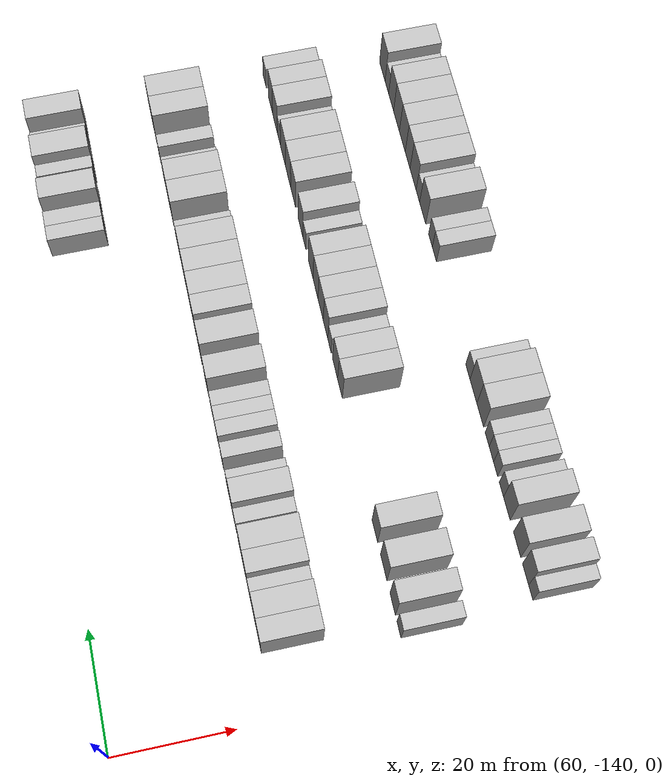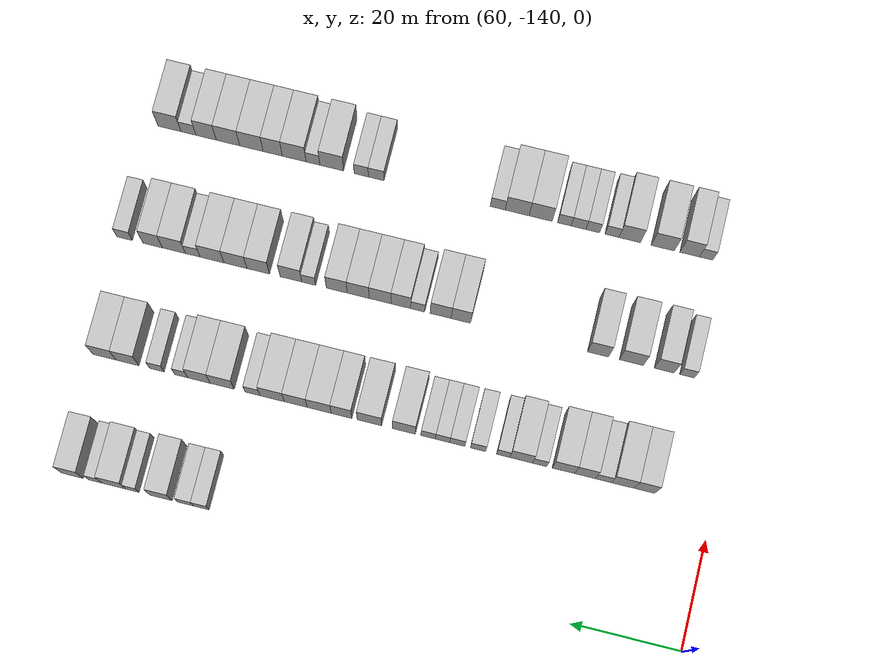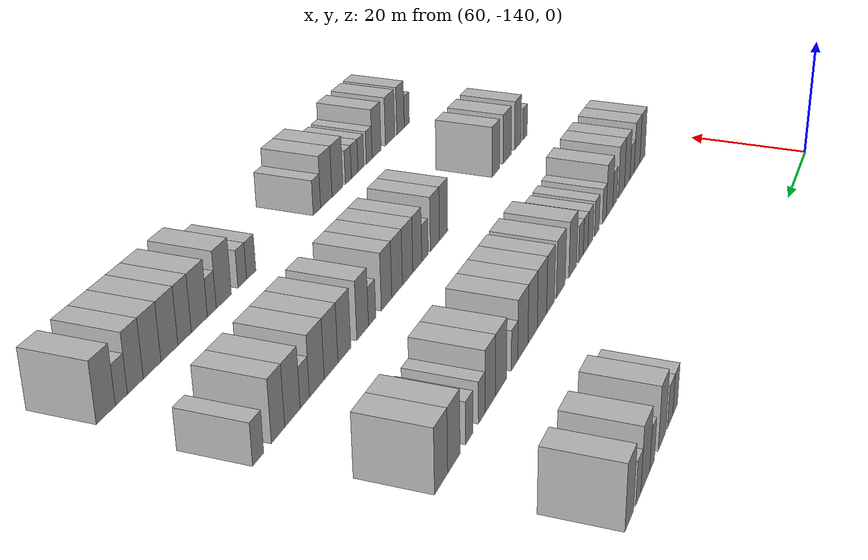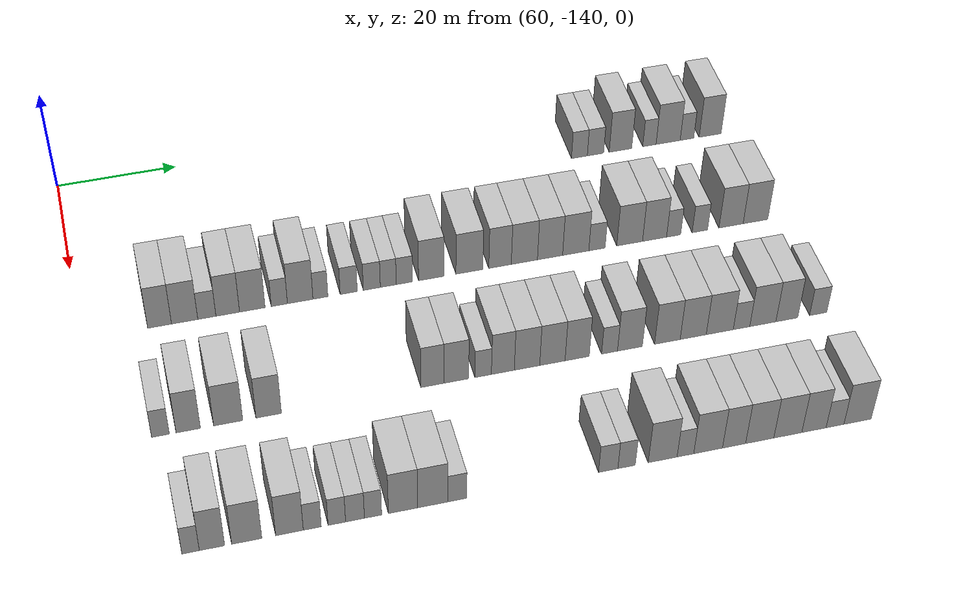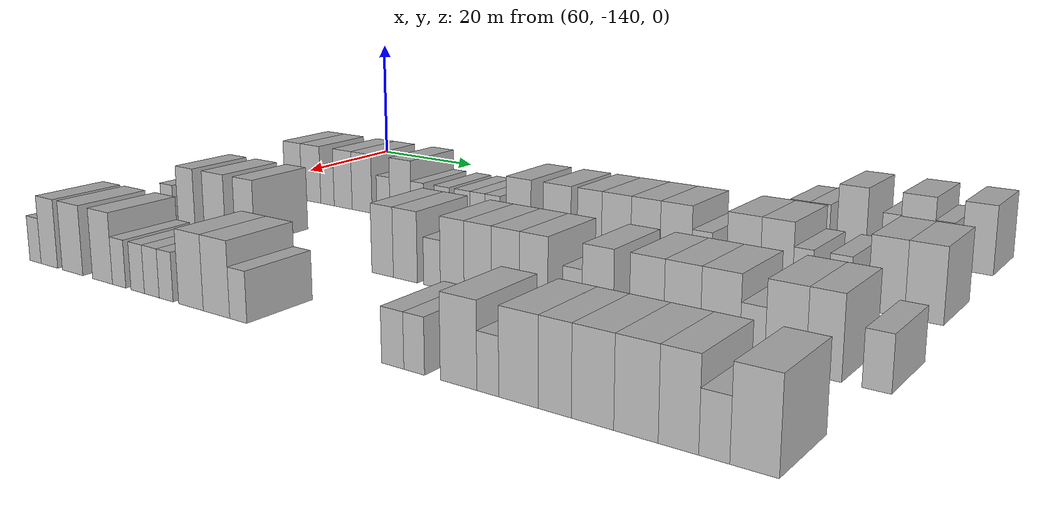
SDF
<sdf version="1.6">
 <world name="default">
  <model name="building_453">
   <static>1</static>
   <pose>69.0000 -52.1066 0 0.000000 0.000000 0.000000</pose>
   <link name="link">
    <pose>0 0 3.00 0 0 0</pose>
    <collision name="collision"><geometry><box><size>10.0000 2.8390 6.0000</size></box></geometry></collision>
    <visual name="visual">
     <cast_shadows>0</cast_shadows>
     <geometry><box><size>10.0000 2.8390 6.0000</size></box></geometry>
     <material>
      <script>
       <uri>model://HANNAS_wall/materials/scripts</uri>
       <uri>model://HANNAS_wall/materials/textures</uri>
       <name>vrc/HANNAS_wall</name>
      </script>
     </material>
    </visual>
   </link>
  </model>
  <model name="building_454">
   <static>1</static>
   <pose>69.0000 -49.2203 0 0.000000 0.000000 0.000000</pose>
   <link name="link">
    <pose>0 0 3.00 0 0 0</pose>
    <collision name="collision"><geometry><box><size>10.0000 2.9337 6.0000</size></box></geometry></collision>
    <visual name="visual">
     <cast_shadows>0</cast_shadows>
     <geometry><box><size>10.0000 2.9337 6.0000</size></box></geometry>
     <material>
      <script>
       <uri>model://HANNAS_wall/materials/scripts</uri>
       <uri>model://HANNAS_wall/materials/textures</uri>
       <name>vrc/HANNAS_wall</name>
      </script>
     </material>
    </visual>
   </link>
  </model>
  <model name="building_455">
   <static>1</static>
   <pose>69.0000 -44.7203 0 0.000000 0.000000 0.000000</pose>
   <link name="link">
    <pose>0 0 4.50 0 0 0</pose>
    <collision name="collision"><geometry><box><size>10.0000 4.0661 9.0000</size></box></geometry></collision>
    <visual name="visual">
     <cast_shadows>0</cast_shadows>
     <geometry><box><size>10.0000 4.0661 9.0000</size></box></geometry>
     <material>
      <script>
       <uri>model://HANNAS_wall/materials/scripts</uri>
       <uri>model://HANNAS_wall/materials/textures</uri>
       <name>vrc/HANNAS_wall</name>
      </script>
     </material>
    </visual>
   </link>
  </model>
  <model name="building_456">
   <static>1</static>
   <pose>69.0000 -39.4778 0 0.000000 0.000000 0.000000</pose>
   <link name="link">
    <pose>0 0 3.00 0 0 0</pose>
    <collision name="collision"><geometry><box><size>10.0000 2.4190 6.0000</size></box></geometry></collision>
    <visual name="visual">
     <cast_shadows>0</cast_shadows>
     <geometry><box><size>10.0000 2.4190 6.0000</size></box></geometry>
     <material>
      <script>
       <uri>model://HANNAS_wall/materials/scripts</uri>
       <uri>model://HANNAS_wall/materials/textures</uri>
       <name>vrc/HANNAS_wall</name>
      </script>
     </material>
    </visual>
   </link>
  </model>
  <model name="building_457">
   <static>1</static>
   <pose>69.0000 -36.0735 0 0.000000 0.000000 0.000000</pose>
   <link name="link">
    <pose>0 0 4.50 0 0 0</pose>
    <collision name="collision"><geometry><box><size>10.0000 4.3895 9.0000</size></box></geometry></collision>
    <visual name="visual">
     <cast_shadows>0</cast_shadows>
     <geometry><box><size>10.0000 4.3895 9.0000</size></box></geometry>
     <material>
      <script>
       <uri>model://HANNAS_wall/materials/scripts</uri>
       <uri>model://HANNAS_wall/materials/textures</uri>
       <name>vrc/HANNAS_wall</name>
      </script>
     </material>
    </visual>
   </link>
  </model>
  <model name="building_458">
   <static>1</static>
   <pose>69.0000 -32.6415 0 0.000000 0.000000 0.000000</pose>
   <link name="link">
    <pose>0 0 3.00 0 0 0</pose>
    <collision name="collision"><geometry><box><size>10.0000 2.4745 6.0000</size></box></geometry></collision>
    <visual name="visual">
     <cast_shadows>0</cast_shadows>
     <geometry><box><size>10.0000 2.4745 6.0000</size></box></geometry>
     <material>
      <script>
       <uri>model://HANNAS_wall/materials/scripts</uri>
       <uri>model://HANNAS_wall/materials/textures</uri>
       <name>vrc/HANNAS_wall</name>
      </script>
     </material>
    </visual>
   </link>
  </model>
  <model name="building_459">
   <static>1</static>
   <pose>69.0000 -28.3959 0 0.000000 0.000000 0.000000</pose>
   <link name="link">
    <pose>0 0 4.50 0 0 0</pose>
    <collision name="collision"><geometry><box><size>10.0000 4.0167 9.0000</size></box></geometry></collision>
    <visual name="visual">
     <cast_shadows>0</cast_shadows>
     <geometry><box><size>10.0000 4.0167 9.0000</size></box></geometry>
     <material>
      <script>
       <uri>model://HANNAS_wall/materials/scripts</uri>
       <uri>model://HANNAS_wall/materials/textures</uri>
       <name>vrc/HANNAS_wall</name>
      </script>
     </material>
    </visual>
   </link>
  </model>
  <model name="building_625">
   <static>1</static>
   <pose>91.0000 -127.5395 0 0.000000 0.000000 0.000000</pose>
   <link name="link">
    <pose>0 0 4.50 0 0 0</pose>
    <collision name="collision"><geometry><box><size>10.0000 3.7783 9.0000</size></box></geometry></collision>
    <visual name="visual">
     <cast_shadows>0</cast_shadows>
     <geometry><box><size>10.0000 3.7783 9.0000</size></box></geometry>
     <material>
      <script>
       <uri>model://HANNAS_wall/materials/scripts</uri>
       <uri>model://HANNAS_wall/materials/textures</uri>
       <name>vrc/HANNAS_wall</name>
      </script>
     </material>
    </visual>
   </link>
  </model>
  <model name="building_626">
   <static>1</static>
   <pose>91.0000 -123.5668 0 0.000000 0.000000 0.000000</pose>
   <link name="link">
    <pose>0 0 4.50 0 0 0</pose>
    <collision name="collision"><geometry><box><size>10.0000 4.1671 9.0000</size></box></geometry></collision>
    <visual name="visual">
     <cast_shadows>0</cast_shadows>
     <geometry><box><size>10.0000 4.1671 9.0000</size></box></geometry>
     <material>
      <script>
       <uri>model://HANNAS_wall/materials/scripts</uri>
       <uri>model://HANNAS_wall/materials/textures</uri>
       <name>vrc/HANNAS_wall</name>
      </script>
     </material>
    </visual>
   </link>
  </model>
  <model name="building_627">
   <static>1</static>
   <pose>91.0000 -120.0389 0 0.000000 0.000000 0.000000</pose>
   <link name="link">
    <pose>0 0 3.00 0 0 0</pose>
    <collision name="collision"><geometry><box><size>10.0000 2.8887 6.0000</size></box></geometry></collision>
    <visual name="visual">
     <cast_shadows>0</cast_shadows>
     <geometry><box><size>10.0000 2.8887 6.0000</size></box></geometry>
     <material>
      <script>
       <uri>model://HANNAS_wall/materials/scripts</uri>
       <uri>model://HANNAS_wall/materials/textures</uri>
       <name>vrc/HANNAS_wall</name>
      </script>
     </material>
    </visual>
   </link>
  </model>
  <model name="building_628">
   <static>1</static>
   <pose>91.0000 -116.7028 0 0.000000 0.000000 0.000000</pose>
   <link name="link">
    <pose>0 0 4.50 0 0 0</pose>
    <collision name="collision"><geometry><box><size>10.0000 3.7835 9.0000</size></box></geometry></collision>
    <visual name="visual">
     <cast_shadows>0</cast_shadows>
     <geometry><box><size>10.0000 3.7835 9.0000</size></box></geometry>
     <material>
      <script>
       <uri>model://HANNAS_wall/materials/scripts</uri>
       <uri>model://HANNAS_wall/materials/textures</uri>
       <name>vrc/HANNAS_wall</name>
      </script>
     </material>
    </visual>
   </link>
  </model>
  <model name="building_629">
   <static>1</static>
   <pose>91.0000 -112.7628 0 0.000000 0.000000 0.000000</pose>
   <link name="link">
    <pose>0 0 4.50 0 0 0</pose>
    <collision name="collision"><geometry><box><size>10.0000 4.0965 9.0000</size></box></geometry></collision>
    <visual name="visual">
     <cast_shadows>0</cast_shadows>
     <geometry><box><size>10.0000 4.0965 9.0000</size></box></geometry>
     <material>
      <script>
       <uri>model://HANNAS_wall/materials/scripts</uri>
       <uri>model://HANNAS_wall/materials/textures</uri>
       <name>vrc/HANNAS_wall</name>
      </script>
     </material>
    </visual>
   </link>
  </model>
  <model name="building_630">
   <static>1</static>
   <pose>91.0000 -108.4117 0 0.000000 0.000000 0.000000</pose>
   <link name="link">
    <pose>0 0 3.00 0 0 0</pose>
    <collision name="collision"><geometry><box><size>10.0000 2.6057 6.0000</size></box></geometry></collision>
    <visual name="visual">
     <cast_shadows>0</cast_shadows>
     <geometry><box><size>10.0000 2.6057 6.0000</size></box></geometry>
     <material>
      <script>
       <uri>model://HANNAS_wall/materials/scripts</uri>
       <uri>model://HANNAS_wall/materials/textures</uri>
       <name>vrc/HANNAS_wall</name>
      </script>
     </material>
    </visual>
   </link>
  </model>
  <model name="building_631">
   <static>1</static>
   <pose>91.0000 -105.0408 0 0.000000 0.000000 0.000000</pose>
   <link name="link">
    <pose>0 0 4.50 0 0 0</pose>
    <collision name="collision"><geometry><box><size>10.0000 4.1360 9.0000</size></box></geometry></collision>
    <visual name="visual">
     <cast_shadows>0</cast_shadows>
     <geometry><box><size>10.0000 4.1360 9.0000</size></box></geometry>
     <material>
      <script>
       <uri>model://HANNAS_wall/materials/scripts</uri>
       <uri>model://HANNAS_wall/materials/textures</uri>
       <name>vrc/HANNAS_wall</name>
      </script>
     </material>
    </visual>
   </link>
  </model>
  <model name="building_632">
   <static>1</static>
   <pose>91.0000 -101.7594 0 0.000000 0.000000 0.000000</pose>
   <link name="link">
    <pose>0 0 3.00 0 0 0</pose>
    <collision name="collision"><geometry><box><size>10.0000 2.4268 6.0000</size></box></geometry></collision>
    <visual name="visual">
     <cast_shadows>0</cast_shadows>
     <geometry><box><size>10.0000 2.4268 6.0000</size></box></geometry>
     <material>
      <script>
       <uri>model://HANNAS_wall/materials/scripts</uri>
       <uri>model://HANNAS_wall/materials/textures</uri>
       <name>vrc/HANNAS_wall</name>
      </script>
     </material>
    </visual>
   </link>
  </model>
  <model name="building_633">
   <static>1</static>
   <pose>91.0000 -97.1519 0 0.000000 0.000000 0.000000</pose>
   <link name="link">
    <pose>0 0 3.00 0 0 0</pose>
    <collision name="collision"><geometry><box><size>10.0000 2.7883 6.0000</size></box></geometry></collision>
    <visual name="visual">
     <cast_shadows>0</cast_shadows>
     <geometry><box><size>10.0000 2.7883 6.0000</size></box></geometry>
     <material>
      <script>
       <uri>model://HANNAS_wall/materials/scripts</uri>
       <uri>model://HANNAS_wall/materials/textures</uri>
       <name>vrc/HANNAS_wall</name>
      </script>
     </material>
    </visual>
   </link>
  </model>
  <model name="building_634">
   <static>1</static>
   <pose>91.0000 -93.3633 0 0.000000 0.000000 0.000000</pose>
   <link name="link">
    <pose>0 0 3.00 0 0 0</pose>
    <collision name="collision"><geometry><box><size>10.0000 2.7889 6.0000</size></box></geometry></collision>
    <visual name="visual">
     <cast_shadows>0</cast_shadows>
     <geometry><box><size>10.0000 2.7889 6.0000</size></box></geometry>
     <material>
      <script>
       <uri>model://HANNAS_wall/materials/scripts</uri>
       <uri>model://HANNAS_wall/materials/textures</uri>
       <name>vrc/HANNAS_wall</name>
      </script>
     </material>
    </visual>
   </link>
  </model>
  <model name="building_635">
   <static>1</static>
   <pose>91.0000 -90.6606 0 0.000000 0.000000 0.000000</pose>
   <link name="link">
    <pose>0 0 3.00 0 0 0</pose>
    <collision name="collision"><geometry><box><size>10.0000 2.6164 6.0000</size></box></geometry></collision>
    <visual name="visual">
     <cast_shadows>0</cast_shadows>
     <geometry><box><size>10.0000 2.6164 6.0000</size></box></geometry>
     <material>
      <script>
       <uri>model://HANNAS_wall/materials/scripts</uri>
       <uri>model://HANNAS_wall/materials/textures</uri>
       <name>vrc/HANNAS_wall</name>
      </script>
     </material>
    </visual>
   </link>
  </model>
  <model name="building_636">
   <static>1</static>
   <pose>91.0000 -88.0102 0 0.000000 0.000000 0.000000</pose>
   <link name="link">
    <pose>0 0 3.00 0 0 0</pose>
    <collision name="collision"><geometry><box><size>10.0000 2.6845 6.0000</size></box></geometry></collision>
    <visual name="visual">
     <cast_shadows>0</cast_shadows>
     <geometry><box><size>10.0000 2.6845 6.0000</size></box></geometry>
     <material>
      <script>
       <uri>model://HANNAS_wall/materials/scripts</uri>
       <uri>model://HANNAS_wall/materials/textures</uri>
       <name>vrc/HANNAS_wall</name>
      </script>
     </material>
    </visual>
   </link>
  </model>
  <model name="building_637">
   <static>1</static>
   <pose>91.0000 -83.5665 0 0.000000 0.000000 0.000000</pose>
   <link name="link">
    <pose>0 0 4.50 0 0 0</pose>
    <collision name="collision"><geometry><box><size>10.0000 4.2030 9.0000</size></box></geometry></collision>
    <visual name="visual">
     <cast_shadows>0</cast_shadows>
     <geometry><box><size>10.0000 4.2030 9.0000</size></box></geometry>
     <material>
      <script>
       <uri>model://HANNAS_wall/materials/scripts</uri>
       <uri>model://HANNAS_wall/materials/textures</uri>
       <name>vrc/HANNAS_wall</name>
      </script>
     </material>
    </visual>
   </link>
  </model>
  <model name="building_638">
   <static>1</static>
   <pose>91.0000 -77.2211 0 0.000000 0.000000 0.000000</pose>
   <link name="link">
    <pose>0 0 4.50 0 0 0</pose>
    <collision name="collision"><geometry><box><size>10.0000 4.4879 9.0000</size></box></geometry></collision>
    <visual name="visual">
     <cast_shadows>0</cast_shadows>
     <geometry><box><size>10.0000 4.4879 9.0000</size></box></geometry>
     <material>
      <script>
       <uri>model://HANNAS_wall/materials/scripts</uri>
       <uri>model://HANNAS_wall/materials/textures</uri>
       <name>vrc/HANNAS_wall</name>
      </script>
     </material>
    </visual>
   </link>
  </model>
  <model name="building_639">
   <static>1</static>
   <pose>91.0000 -72.0878 0 0.000000 0.000000 0.000000</pose>
   <link name="link">
    <pose>0 0 4.50 0 0 0</pose>
    <collision name="collision"><geometry><box><size>10.0000 3.7786 9.0000</size></box></geometry></collision>
    <visual name="visual">
     <cast_shadows>0</cast_shadows>
     <geometry><box><size>10.0000 3.7786 9.0000</size></box></geometry>
     <material>
      <script>
       <uri>model://HANNAS_wall/materials/scripts</uri>
       <uri>model://HANNAS_wall/materials/textures</uri>
       <name>vrc/HANNAS_wall</name>
      </script>
     </material>
    </visual>
   </link>
  </model>
  <model name="building_640">
   <static>1</static>
   <pose>91.0000 -67.9890 0 0.000000 0.000000 0.000000</pose>
   <link name="link">
    <pose>0 0 4.50 0 0 0</pose>
    <collision name="collision"><geometry><box><size>10.0000 4.4190 9.0000</size></box></geometry></collision>
    <visual name="visual">
     <cast_shadows>0</cast_shadows>
     <geometry><box><size>10.0000 4.4190 9.0000</size></box></geometry>
     <material>
      <script>
       <uri>model://HANNAS_wall/materials/scripts</uri>
       <uri>model://HANNAS_wall/materials/textures</uri>
       <name>vrc/HANNAS_wall</name>
      </script>
     </material>
    </visual>
   </link>
  </model>
  <model name="building_641">
   <static>1</static>
   <pose>91.0000 -63.6487 0 0.000000 0.000000 0.000000</pose>
   <link name="link">
    <pose>0 0 4.50 0 0 0</pose>
    <collision name="collision"><geometry><box><size>10.0000 4.2615 9.0000</size></box></geometry></collision>
    <visual name="visual">
     <cast_shadows>0</cast_shadows>
     <geometry><box><size>10.0000 4.2615 9.0000</size></box></geometry>
     <material>
      <script>
       <uri>model://HANNAS_wall/materials/scripts</uri>
       <uri>model://HANNAS_wall/materials/textures</uri>
       <name>vrc/HANNAS_wall</name>
      </script>
     </material>
    </visual>
   </link>
  </model>
  <model name="building_642">
   <static>1</static>
   <pose>91.0000 -59.2855 0 0.000000 0.000000 0.000000</pose>
   <link name="link">
    <pose>0 0 4.50 0 0 0</pose>
    <collision name="collision"><geometry><box><size>10.0000 4.4649 9.0000</size></box></geometry></collision>
    <visual name="visual">
     <cast_shadows>0</cast_shadows>
     <geometry><box><size>10.0000 4.4649 9.0000</size></box></geometry>
     <material>
      <script>
       <uri>model://HANNAS_wall/materials/scripts</uri>
       <uri>model://HANNAS_wall/materials/textures</uri>
       <name>vrc/HANNAS_wall</name>
      </script>
     </material>
    </visual>
   </link>
  </model>
  <model name="building_643">
   <static>1</static>
   <pose>91.0000 -55.6647 0 0.000000 0.000000 0.000000</pose>
   <link name="link">
    <pose>0 0 3.00 0 0 0</pose>
    <collision name="collision"><geometry><box><size>10.0000 2.7769 6.0000</size></box></geometry></collision>
    <visual name="visual">
     <cast_shadows>0</cast_shadows>
     <geometry><box><size>10.0000 2.7769 6.0000</size></box></geometry>
     <material>
      <script>
       <uri>model://HANNAS_wall/materials/scripts</uri>
       <uri>model://HANNAS_wall/materials/textures</uri>
       <name>vrc/HANNAS_wall</name>
      </script>
     </material>
    </visual>
   </link>
  </model>
  <model name="building_644">
   <static>1</static>
   <pose>91.0000 -50.0605 0 0.000000 0.000000 0.000000</pose>
   <link name="link">
    <pose>0 0 4.50 0 0 0</pose>
    <collision name="collision"><geometry><box><size>10.0000 4.4315 9.0000</size></box></geometry></collision>
    <visual name="visual">
     <cast_shadows>0</cast_shadows>
     <geometry><box><size>10.0000 4.4315 9.0000</size></box></geometry>
     <material>
      <script>
       <uri>model://HANNAS_wall/materials/scripts</uri>
       <uri>model://HANNAS_wall/materials/textures</uri>
       <name>vrc/HANNAS_wall</name>
      </script>
     </material>
    </visual>
   </link>
  </model>
  <model name="building_645">
   <static>1</static>
   <pose>91.0000 -45.7682 0 0.000000 0.000000 0.000000</pose>
   <link name="link">
    <pose>0 0 4.50 0 0 0</pose>
    <collision name="collision"><geometry><box><size>10.0000 4.1531 9.0000</size></box></geometry></collision>
    <visual name="visual">
     <cast_shadows>0</cast_shadows>
     <geometry><box><size>10.0000 4.1531 9.0000</size></box></geometry>
     <material>
      <script>
       <uri>model://HANNAS_wall/materials/scripts</uri>
       <uri>model://HANNAS_wall/materials/textures</uri>
       <name>vrc/HANNAS_wall</name>
      </script>
     </material>
    </visual>
   </link>
  </model>
  <model name="building_646">
   <static>1</static>
   <pose>91.0000 -42.4720 0 0.000000 0.000000 0.000000</pose>
   <link name="link">
    <pose>0 0 3.00 0 0 0</pose>
    <collision name="collision"><geometry><box><size>10.0000 2.4392 6.0000</size></box></geometry></collision>
    <visual name="visual">
     <cast_shadows>0</cast_shadows>
     <geometry><box><size>10.0000 2.4392 6.0000</size></box></geometry>
     <material>
      <script>
       <uri>model://HANNAS_wall/materials/scripts</uri>
       <uri>model://HANNAS_wall/materials/textures</uri>
       <name>vrc/HANNAS_wall</name>
      </script>
     </material>
    </visual>
   </link>
  </model>
  <model name="building_647">
   <static>1</static>
   <pose>91.0000 -37.9143 0 0.000000 0.000000 0.000000</pose>
   <link name="link">
    <pose>0 0 3.00 0 0 0</pose>
    <collision name="collision"><geometry><box><size>10.0000 2.6764 6.0000</size></box></geometry></collision>
    <visual name="visual">
     <cast_shadows>0</cast_shadows>
     <geometry><box><size>10.0000 2.6764 6.0000</size></box></geometry>
     <material>
      <script>
       <uri>model://HANNAS_wall/materials/scripts</uri>
       <uri>model://HANNAS_wall/materials/textures</uri>
       <name>vrc/HANNAS_wall</name>
      </script>
     </material>
    </visual>
   </link>
  </model>
  <model name="building_648">
   <static>1</static>
   <pose>91.0000 -32.4590 0 0.000000 0.000000 0.000000</pose>
   <link name="link">
    <pose>0 0 4.50 0 0 0</pose>
    <collision name="collision"><geometry><box><size>10.0000 4.2341 9.0000</size></box></geometry></collision>
    <visual name="visual">
     <cast_shadows>0</cast_shadows>
     <geometry><box><size>10.0000 4.2341 9.0000</size></box></geometry>
     <material>
      <script>
       <uri>model://HANNAS_wall/materials/scripts</uri>
       <uri>model://HANNAS_wall/materials/textures</uri>
       <name>vrc/HANNAS_wall</name>
      </script>
     </material>
    </visual>
   </link>
  </model>
  <model name="building_649">
   <static>1</static>
   <pose>91.0000 -28.1768 0 0.000000 0.000000 0.000000</pose>
   <link name="link">
    <pose>0 0 4.50 0 0 0</pose>
    <collision name="collision"><geometry><box><size>10.0000 4.3303 9.0000</size></box></geometry></collision>
    <visual name="visual">
     <cast_shadows>0</cast_shadows>
     <geometry><box><size>10.0000 4.3303 9.0000</size></box></geometry>
     <material>
      <script>
       <uri>model://HANNAS_wall/materials/scripts</uri>
       <uri>model://HANNAS_wall/materials/textures</uri>
       <name>vrc/HANNAS_wall</name>
      </script>
     </material>
    </visual>
   </link>
  </model>
  <model name="building_816">
   <static>1</static>
   <pose>113.0000 -130.3710 0 0.000000 0.000000 0.000000</pose>
   <link name="link">
    <pose>0 0 3.00 0 0 0</pose>
    <collision name="collision"><geometry><box><size>10.0000 2.6676 6.0000</size></box></geometry></collision>
    <visual name="visual">
     <cast_shadows>0</cast_shadows>
     <geometry><box><size>10.0000 2.6676 6.0000</size></box></geometry>
     <material>
      <script>
       <uri>model://HANNAS_wall/materials/scripts</uri>
       <uri>model://HANNAS_wall/materials/textures</uri>
       <name>vrc/HANNAS_wall</name>
      </script>
     </material>
    </visual>
   </link>
  </model>
  <model name="building_817">
   <static>1</static>
   <pose>113.0000 -126.2046 0 0.000000 0.000000 0.000000</pose>
   <link name="link">
    <pose>0 0 4.50 0 0 0</pose>
    <collision name="collision"><geometry><box><size>10.0000 3.6652 9.0000</size></box></geometry></collision>
    <visual name="visual">
     <cast_shadows>0</cast_shadows>
     <geometry><box><size>10.0000 3.6652 9.0000</size></box></geometry>
     <material>
      <script>
       <uri>model://HANNAS_wall/materials/scripts</uri>
       <uri>model://HANNAS_wall/materials/textures</uri>
       <name>vrc/HANNAS_wall</name>
      </script>
     </material>
    </visual>
   </link>
  </model>
  <model name="building_818">
   <static>1</static>
   <pose>113.0000 -120.1629 0 0.000000 0.000000 0.000000</pose>
   <link name="link">
    <pose>0 0 4.50 0 0 0</pose>
    <collision name="collision"><geometry><box><size>10.0000 4.4180 9.0000</size></box></geometry></collision>
    <visual name="visual">
     <cast_shadows>0</cast_shadows>
     <geometry><box><size>10.0000 4.4180 9.0000</size></box></geometry>
     <material>
      <script>
       <uri>model://HANNAS_wall/materials/scripts</uri>
       <uri>model://HANNAS_wall/materials/textures</uri>
       <name>vrc/HANNAS_wall</name>
      </script>
     </material>
    </visual>
   </link>
  </model>
  <model name="building_819">
   <static>1</static>
   <pose>113.0000 -114.0077 0 0.000000 0.000000 0.000000</pose>
   <link name="link">
    <pose>0 0 4.50 0 0 0</pose>
    <collision name="collision"><geometry><box><size>10.0000 3.8924 9.0000</size></box></geometry></collision>
    <visual name="visual">
     <cast_shadows>0</cast_shadows>
     <geometry><box><size>10.0000 3.8924 9.0000</size></box></geometry>
     <material>
      <script>
       <uri>model://HANNAS_wall/materials/scripts</uri>
       <uri>model://HANNAS_wall/materials/textures</uri>
       <name>vrc/HANNAS_wall</name>
      </script>
     </material>
    </visual>
   </link>
  </model>
  <model name="building_820">
   <static>1</static>
   <pose>113.0000 -88.6542 0 0.000000 0.000000 0.000000</pose>
   <link name="link">
    <pose>0 0 4.50 0 0 0</pose>
    <collision name="collision"><geometry><box><size>10.0000 3.6048 9.0000</size></box></geometry></collision>
    <visual name="visual">
     <cast_shadows>0</cast_shadows>
     <geometry><box><size>10.0000 3.6048 9.0000</size></box></geometry>
     <material>
      <script>
       <uri>model://HANNAS_wall/materials/scripts</uri>
       <uri>model://HANNAS_wall/materials/textures</uri>
       <name>vrc/HANNAS_wall</name>
      </script>
     </material>
    </visual>
   </link>
  </model>
  <model name="building_821">
   <static>1</static>
   <pose>113.0000 -84.8950 0 0.000000 0.000000 0.000000</pose>
   <link name="link">
    <pose>0 0 4.50 0 0 0</pose>
    <collision name="collision"><geometry><box><size>10.0000 3.9136 9.0000</size></box></geometry></collision>
    <visual name="visual">
     <cast_shadows>0</cast_shadows>
     <geometry><box><size>10.0000 3.9136 9.0000</size></box></geometry>
     <material>
      <script>
       <uri>model://HANNAS_wall/materials/scripts</uri>
       <uri>model://HANNAS_wall/materials/textures</uri>
       <name>vrc/HANNAS_wall</name>
      </script>
     </material>
    </visual>
   </link>
  </model>
  <model name="building_822">
   <static>1</static>
   <pose>113.0000 -80.6276 0 0.000000 0.000000 0.000000</pose>
   <link name="link">
    <pose>0 0 3.00 0 0 0</pose>
    <collision name="collision"><geometry><box><size>10.0000 2.6211 6.0000</size></box></geometry></collision>
    <visual name="visual">
     <cast_shadows>0</cast_shadows>
     <geometry><box><size>10.0000 2.6211 6.0000</size></box></geometry>
     <material>
      <script>
       <uri>model://HANNAS_wall/materials/scripts</uri>
       <uri>model://HANNAS_wall/materials/textures</uri>
       <name>vrc/HANNAS_wall</name>
      </script>
     </material>
    </visual>
   </link>
  </model>
  <model name="building_823">
   <static>1</static>
   <pose>113.0000 -77.4933 0 0.000000 0.000000 0.000000</pose>
   <link name="link">
    <pose>0 0 4.50 0 0 0</pose>
    <collision name="collision"><geometry><box><size>10.0000 3.6477 9.0000</size></box></geometry></collision>
    <visual name="visual">
     <cast_shadows>0</cast_shadows>
     <geometry><box><size>10.0000 3.6477 9.0000</size></box></geometry>
     <material>
      <script>
       <uri>model://HANNAS_wall/materials/scripts</uri>
       <uri>model://HANNAS_wall/materials/textures</uri>
       <name>vrc/HANNAS_wall</name>
      </script>
     </material>
    </visual>
   </link>
  </model>
  <model name="building_824">
   <static>1</static>
   <pose>113.0000 -73.6338 0 0.000000 0.000000 0.000000</pose>
   <link name="link">
    <pose>0 0 4.50 0 0 0</pose>
    <collision name="collision"><geometry><box><size>10.0000 4.0712 9.0000</size></box></geometry></collision>
    <visual name="visual">
     <cast_shadows>0</cast_shadows>
     <geometry><box><size>10.0000 4.0712 9.0000</size></box></geometry>
     <material>
      <script>
       <uri>model://HANNAS_wall/materials/scripts</uri>
       <uri>model://HANNAS_wall/materials/textures</uri>
       <name>vrc/HANNAS_wall</name>
      </script>
     </material>
    </visual>
   </link>
  </model>
  <model name="building_825">
   <static>1</static>
   <pose>113.0000 -69.5617 0 0.000000 0.000000 0.000000</pose>
   <link name="link">
    <pose>0 0 4.50 0 0 0</pose>
    <collision name="collision"><geometry><box><size>10.0000 4.0730 9.0000</size></box></geometry></collision>
    <visual name="visual">
     <cast_shadows>0</cast_shadows>
     <geometry><box><size>10.0000 4.0730 9.0000</size></box></geometry>
     <material>
      <script>
       <uri>model://HANNAS_wall/materials/scripts</uri>
       <uri>model://HANNAS_wall/materials/textures</uri>
       <name>vrc/HANNAS_wall</name>
      </script>
     </material>
    </visual>
   </link>
  </model>
  <model name="building_826">
   <static>1</static>
   <pose>113.0000 -65.5762 0 0.000000 0.000000 0.000000</pose>
   <link name="link">
    <pose>0 0 4.50 0 0 0</pose>
    <collision name="collision"><geometry><box><size>10.0000 3.8980 9.0000</size></box></geometry></collision>
    <visual name="visual">
     <cast_shadows>0</cast_shadows>
     <geometry><box><size>10.0000 3.8980 9.0000</size></box></geometry>
     <material>
      <script>
       <uri>model://HANNAS_wall/materials/scripts</uri>
       <uri>model://HANNAS_wall/materials/textures</uri>
       <name>vrc/HANNAS_wall</name>
      </script>
     </material>
    </visual>
   </link>
  </model>
  <model name="building_827">
   <static>1</static>
   <pose>113.0000 -60.3344 0 0.000000 0.000000 0.000000</pose>
   <link name="link">
    <pose>0 0 3.00 0 0 0</pose>
    <collision name="collision"><geometry><box><size>10.0000 2.5856 6.0000</size></box></geometry></collision>
    <visual name="visual">
     <cast_shadows>0</cast_shadows>
     <geometry><box><size>10.0000 2.5856 6.0000</size></box></geometry>
     <material>
      <script>
       <uri>model://HANNAS_wall/materials/scripts</uri>
       <uri>model://HANNAS_wall/materials/textures</uri>
       <name>vrc/HANNAS_wall</name>
      </script>
     </material>
    </visual>
   </link>
  </model>
  <model name="building_828">
   <static>1</static>
   <pose>113.0000 -57.0173 0 0.000000 0.000000 0.000000</pose>
   <link name="link">
    <pose>0 0 4.50 0 0 0</pose>
    <collision name="collision"><geometry><box><size>10.0000 4.0487 9.0000</size></box></geometry></collision>
    <visual name="visual">
     <cast_shadows>0</cast_shadows>
     <geometry><box><size>10.0000 4.0487 9.0000</size></box></geometry>
     <material>
      <script>
       <uri>model://HANNAS_wall/materials/scripts</uri>
       <uri>model://HANNAS_wall/materials/textures</uri>
       <name>vrc/HANNAS_wall</name>
      </script>
     </material>
    </visual>
   </link>
  </model>
  <model name="building_829">
   <static>1</static>
   <pose>113.0000 -50.8930 0 0.000000 0.000000 0.000000</pose>
   <link name="link">
    <pose>0 0 4.50 0 0 0</pose>
    <collision name="collision"><geometry><box><size>10.0000 4.1999 9.0000</size></box></geometry></collision>
    <visual name="visual">
     <cast_shadows>0</cast_shadows>
     <geometry><box><size>10.0000 4.1999 9.0000</size></box></geometry>
     <material>
      <script>
       <uri>model://HANNAS_wall/materials/scripts</uri>
       <uri>model://HANNAS_wall/materials/textures</uri>
       <name>vrc/HANNAS_wall</name>
      </script>
     </material>
    </visual>
   </link>
  </model>
  <model name="building_830">
   <static>1</static>
   <pose>113.0000 -46.6417 0 0.000000 0.000000 0.000000</pose>
   <link name="link">
    <pose>0 0 4.50 0 0 0</pose>
    <collision name="collision"><geometry><box><size>10.0000 4.3027 9.0000</size></box></geometry></collision>
    <visual name="visual">
     <cast_shadows>0</cast_shadows>
     <geometry><box><size>10.0000 4.3027 9.0000</size></box></geometry>
     <material>
      <script>
       <uri>model://HANNAS_wall/materials/scripts</uri>
       <uri>model://HANNAS_wall/materials/textures</uri>
       <name>vrc/HANNAS_wall</name>
      </script>
     </material>
    </visual>
   </link>
  </model>
  <model name="building_831">
   <static>1</static>
   <pose>113.0000 -42.2481 0 0.000000 0.000000 0.000000</pose>
   <link name="link">
    <pose>0 0 4.50 0 0 0</pose>
    <collision name="collision"><geometry><box><size>10.0000 4.4845 9.0000</size></box></geometry></collision>
    <visual name="visual">
     <cast_shadows>0</cast_shadows>
     <geometry><box><size>10.0000 4.4845 9.0000</size></box></geometry>
     <material>
      <script>
       <uri>model://HANNAS_wall/materials/scripts</uri>
       <uri>model://HANNAS_wall/materials/textures</uri>
       <name>vrc/HANNAS_wall</name>
      </script>
     </material>
    </visual>
   </link>
  </model>
  <model name="building_832">
   <static>1</static>
   <pose>113.0000 -38.6339 0 0.000000 0.000000 0.000000</pose>
   <link name="link">
    <pose>0 0 3.00 0 0 0</pose>
    <collision name="collision"><geometry><box><size>10.0000 2.7440 6.0000</size></box></geometry></collision>
    <visual name="visual">
     <cast_shadows>0</cast_shadows>
     <geometry><box><size>10.0000 2.7440 6.0000</size></box></geometry>
     <material>
      <script>
       <uri>model://HANNAS_wall/materials/scripts</uri>
       <uri>model://HANNAS_wall/materials/textures</uri>
       <name>vrc/HANNAS_wall</name>
      </script>
     </material>
    </visual>
   </link>
  </model>
  <model name="building_833">
   <static>1</static>
   <pose>113.0000 -35.0810 0 0.000000 0.000000 0.000000</pose>
   <link name="link">
    <pose>0 0 4.50 0 0 0</pose>
    <collision name="collision"><geometry><box><size>10.0000 4.3618 9.0000</size></box></geometry></collision>
    <visual name="visual">
     <cast_shadows>0</cast_shadows>
     <geometry><box><size>10.0000 4.3618 9.0000</size></box></geometry>
     <material>
      <script>
       <uri>model://HANNAS_wall/materials/scripts</uri>
       <uri>model://HANNAS_wall/materials/textures</uri>
       <name>vrc/HANNAS_wall</name>
      </script>
     </material>
    </visual>
   </link>
  </model>
  <model name="building_834">
   <static>1</static>
   <pose>113.0000 -31.0686 0 0.000000 0.000000 0.000000</pose>
   <link name="link">
    <pose>0 0 4.50 0 0 0</pose>
    <collision name="collision"><geometry><box><size>10.0000 3.6629 9.0000</size></box></geometry></collision>
    <visual name="visual">
     <cast_shadows>0</cast_shadows>
     <geometry><box><size>10.0000 3.6629 9.0000</size></box></geometry>
     <material>
      <script>
       <uri>model://HANNAS_wall/materials/scripts</uri>
       <uri>model://HANNAS_wall/materials/textures</uri>
       <name>vrc/HANNAS_wall</name>
      </script>
     </material>
    </visual>
   </link>
  </model>
  <model name="building_835">
   <static>1</static>
   <pose>113.0000 -25.7887 0 0.000000 0.000000 0.000000</pose>
   <link name="link">
    <pose>0 0 3.00 0 0 0</pose>
    <collision name="collision"><geometry><box><size>10.0000 2.8968 6.0000</size></box></geometry></collision>
    <visual name="visual">
     <cast_shadows>0</cast_shadows>
     <geometry><box><size>10.0000 2.8968 6.0000</size></box></geometry>
     <material>
      <script>
       <uri>model://HANNAS_wall/materials/scripts</uri>
       <uri>model://HANNAS_wall/materials/textures</uri>
       <name>vrc/HANNAS_wall</name>
      </script>
     </material>
    </visual>
   </link>
  </model>
  <model name="building_990">
   <static>1</static>
   <pose>135.0000 -129.0734 0 0.000000 0.000000 0.000000</pose>
   <link name="link">
    <pose>0 0 3.00 0 0 0</pose>
    <collision name="collision"><geometry><box><size>10.0000 2.4908 6.0000</size></box></geometry></collision>
    <visual name="visual">
     <cast_shadows>0</cast_shadows>
     <geometry><box><size>10.0000 2.4908 6.0000</size></box></geometry>
     <material>
      <script>
       <uri>model://HANNAS_wall/materials/scripts</uri>
       <uri>model://HANNAS_wall/materials/textures</uri>
       <name>vrc/HANNAS_wall</name>
      </script>
     </material>
    </visual>
   </link>
  </model>
  <model name="building_991">
   <static>1</static>
   <pose>135.0000 -126.0169 0 0.000000 0.000000 0.000000</pose>
   <link name="link">
    <pose>0 0 4.50 0 0 0</pose>
    <collision name="collision"><geometry><box><size>10.0000 3.6222 9.0000</size></box></geometry></collision>
    <visual name="visual">
     <cast_shadows>0</cast_shadows>
     <geometry><box><size>10.0000 3.6222 9.0000</size></box></geometry>
     <material>
      <script>
       <uri>model://HANNAS_wall/materials/scripts</uri>
       <uri>model://HANNAS_wall/materials/textures</uri>
       <name>vrc/HANNAS_wall</name>
      </script>
     </material>
    </visual>
   </link>
  </model>
  <model name="building_992">
   <static>1</static>
   <pose>135.0000 -121.0386 0 0.000000 0.000000 0.000000</pose>
   <link name="link">
    <pose>0 0 4.50 0 0 0</pose>
    <collision name="collision"><geometry><box><size>10.0000 4.3346 9.0000</size></box></geometry></collision>
    <visual name="visual">
     <cast_shadows>0</cast_shadows>
     <geometry><box><size>10.0000 4.3346 9.0000</size></box></geometry>
     <material>
      <script>
       <uri>model://HANNAS_wall/materials/scripts</uri>
       <uri>model://HANNAS_wall/materials/textures</uri>
       <name>vrc/HANNAS_wall</name>
      </script>
     </material>
    </visual>
   </link>
  </model>
  <model name="building_993">
   <static>1</static>
   <pose>135.0000 -114.8690 0 0.000000 0.000000 0.000000</pose>
   <link name="link">
    <pose>0 0 4.50 0 0 0</pose>
    <collision name="collision"><geometry><box><size>10.0000 4.0047 9.0000</size></box></geometry></collision>
    <visual name="visual">
     <cast_shadows>0</cast_shadows>
     <geometry><box><size>10.0000 4.0047 9.0000</size></box></geometry>
     <material>
      <script>
       <uri>model://HANNAS_wall/materials/scripts</uri>
       <uri>model://HANNAS_wall/materials/textures</uri>
       <name>vrc/HANNAS_wall</name>
      </script>
     </material>
    </visual>
   </link>
  </model>
  <model name="building_994">
   <static>1</static>
   <pose>135.0000 -111.5622 0 0.000000 0.000000 0.000000</pose>
   <link name="link">
    <pose>0 0 3.00 0 0 0</pose>
    <collision name="collision"><geometry><box><size>10.0000 2.6087 6.0000</size></box></geometry></collision>
    <visual name="visual">
     <cast_shadows>0</cast_shadows>
     <geometry><box><size>10.0000 2.6087 6.0000</size></box></geometry>
     <material>
      <script>
       <uri>model://HANNAS_wall/materials/scripts</uri>
       <uri>model://HANNAS_wall/materials/textures</uri>
       <name>vrc/HANNAS_wall</name>
      </script>
     </material>
    </visual>
   </link>
  </model>
  <model name="building_995">
   <static>1</static>
   <pose>135.0000 -107.9806 0 0.000000 0.000000 0.000000</pose>
   <link name="link">
    <pose>0 0 3.00 0 0 0</pose>
    <collision name="collision"><geometry><box><size>10.0000 2.5545 6.0000</size></box></geometry></collision>
    <visual name="visual">
     <cast_shadows>0</cast_shadows>
     <geometry><box><size>10.0000 2.5545 6.0000</size></box></geometry>
     <material>
      <script>
       <uri>model://HANNAS_wall/materials/scripts</uri>
       <uri>model://HANNAS_wall/materials/textures</uri>
       <name>vrc/HANNAS_wall</name>
      </script>
     </material>
    </visual>
   </link>
  </model>
  <model name="building_996">
   <static>1</static>
   <pose>135.0000 -105.3229 0 0.000000 0.000000 0.000000</pose>
   <link name="link">
    <pose>0 0 3.00 0 0 0</pose>
    <collision name="collision"><geometry><box><size>10.0000 2.7610 6.0000</size></box></geometry></collision>
    <visual name="visual">
     <cast_shadows>0</cast_shadows>
     <geometry><box><size>10.0000 2.7610 6.0000</size></box></geometry>
     <material>
      <script>
       <uri>model://HANNAS_wall/materials/scripts</uri>
       <uri>model://HANNAS_wall/materials/textures</uri>
       <name>vrc/HANNAS_wall</name>
      </script>
     </material>
    </visual>
   </link>
  </model>
  <model name="building_997">
   <static>1</static>
   <pose>135.0000 -102.6779 0 0.000000 0.000000 0.000000</pose>
   <link name="link">
    <pose>0 0 3.00 0 0 0</pose>
    <collision name="collision"><geometry><box><size>10.0000 2.5290 6.0000</size></box></geometry></collision>
    <visual name="visual">
     <cast_shadows>0</cast_shadows>
     <geometry><box><size>10.0000 2.5290 6.0000</size></box></geometry>
     <material>
      <script>
       <uri>model://HANNAS_wall/materials/scripts</uri>
       <uri>model://HANNAS_wall/materials/textures</uri>
       <name>vrc/HANNAS_wall</name>
      </script>
     </material>
    </visual>
   </link>
  </model>
  <model name="building_998">
   <static>1</static>
   <pose>135.0000 -98.2482 0 0.000000 0.000000 0.000000</pose>
   <link name="link">
    <pose>0 0 4.50 0 0 0</pose>
    <collision name="collision"><geometry><box><size>10.0000 4.3304 9.0000</size></box></geometry></collision>
    <visual name="visual">
     <cast_shadows>0</cast_shadows>
     <geometry><box><size>10.0000 4.3304 9.0000</size></box></geometry>
     <material>
      <script>
       <uri>model://HANNAS_wall/materials/scripts</uri>
       <uri>model://HANNAS_wall/materials/textures</uri>
       <name>vrc/HANNAS_wall</name>
      </script>
     </material>
    </visual>
   </link>
  </model>
  <model name="building_999">
   <static>1</static>
   <pose>135.0000 -93.8506 0 0.000000 0.000000 0.000000</pose>
   <link name="link">
    <pose>0 0 4.50 0 0 0</pose>
    <collision name="collision"><geometry><box><size>10.0000 4.4646 9.0000</size></box></geometry></collision>
    <visual name="visual">
     <cast_shadows>0</cast_shadows>
     <geometry><box><size>10.0000 4.4646 9.0000</size></box></geometry>
     <material>
      <script>
       <uri>model://HANNAS_wall/materials/scripts</uri>
       <uri>model://HANNAS_wall/materials/textures</uri>
       <name>vrc/HANNAS_wall</name>
      </script>
     </material>
    </visual>
   </link>
  </model>
  <model name="building_1000">
   <static>1</static>
   <pose>135.0000 -90.2130 0 0.000000 0.000000 0.000000</pose>
   <link name="link">
    <pose>0 0 3.00 0 0 0</pose>
    <collision name="collision"><geometry><box><size>10.0000 2.8106 6.0000</size></box></geometry></collision>
    <visual name="visual">
     <cast_shadows>0</cast_shadows>
     <geometry><box><size>10.0000 2.8106 6.0000</size></box></geometry>
     <material>
      <script>
       <uri>model://HANNAS_wall/materials/scripts</uri>
       <uri>model://HANNAS_wall/materials/textures</uri>
       <name>vrc/HANNAS_wall</name>
      </script>
     </material>
    </visual>
   </link>
  </model>
  <model name="building_1001">
   <static>1</static>
   <pose>135.0000 -67.3609 0 0.000000 0.000000 0.000000</pose>
   <link name="link">
    <pose>0 0 3.00 0 0 0</pose>
    <collision name="collision"><geometry><box><size>10.0000 2.9646 6.0000</size></box></geometry></collision>
    <visual name="visual">
     <cast_shadows>0</cast_shadows>
     <geometry><box><size>10.0000 2.9646 6.0000</size></box></geometry>
     <material>
      <script>
       <uri>model://HANNAS_wall/materials/scripts</uri>
       <uri>model://HANNAS_wall/materials/textures</uri>
       <name>vrc/HANNAS_wall</name>
      </script>
     </material>
    </visual>
   </link>
  </model>
  <model name="building_1002">
   <static>1</static>
   <pose>135.0000 -64.5389 0 0.000000 0.000000 0.000000</pose>
   <link name="link">
    <pose>0 0 3.00 0 0 0</pose>
    <collision name="collision"><geometry><box><size>10.0000 2.6793 6.0000</size></box></geometry></collision>
    <visual name="visual">
     <cast_shadows>0</cast_shadows>
     <geometry><box><size>10.0000 2.6793 6.0000</size></box></geometry>
     <material>
      <script>
       <uri>model://HANNAS_wall/materials/scripts</uri>
       <uri>model://HANNAS_wall/materials/textures</uri>
       <name>vrc/HANNAS_wall</name>
      </script>
     </material>
    </visual>
   </link>
  </model>
  <model name="building_1003">
   <static>1</static>
   <pose>135.0000 -58.9600 0 0.000000 0.000000 0.000000</pose>
   <link name="link">
    <pose>0 0 4.50 0 0 0</pose>
    <collision name="collision"><geometry><box><size>10.0000 4.4787 9.0000</size></box></geometry></collision>
    <visual name="visual">
     <cast_shadows>0</cast_shadows>
     <geometry><box><size>10.0000 4.4787 9.0000</size></box></geometry>
     <material>
      <script>
       <uri>model://HANNAS_wall/materials/scripts</uri>
       <uri>model://HANNAS_wall/materials/textures</uri>
       <name>vrc/HANNAS_wall</name>
      </script>
     </material>
    </visual>
   </link>
  </model>
  <model name="building_1004">
   <static>1</static>
   <pose>135.0000 -55.4271 0 0.000000 0.000000 0.000000</pose>
   <link name="link">
    <pose>0 0 3.00 0 0 0</pose>
    <collision name="collision"><geometry><box><size>10.0000 2.5870 6.0000</size></box></geometry></collision>
    <visual name="visual">
     <cast_shadows>0</cast_shadows>
     <geometry><box><size>10.0000 2.5870 6.0000</size></box></geometry>
     <material>
      <script>
       <uri>model://HANNAS_wall/materials/scripts</uri>
       <uri>model://HANNAS_wall/materials/textures</uri>
       <name>vrc/HANNAS_wall</name>
      </script>
     </material>
    </visual>
   </link>
  </model>
  <model name="building_1005">
   <static>1</static>
   <pose>135.0000 -51.8863 0 0.000000 0.000000 0.000000</pose>
   <link name="link">
    <pose>0 0 4.50 0 0 0</pose>
    <collision name="collision"><geometry><box><size>10.0000 4.4947 9.0000</size></box></geometry></collision>
    <visual name="visual">
     <cast_shadows>0</cast_shadows>
     <geometry><box><size>10.0000 4.4947 9.0000</size></box></geometry>
     <material>
      <script>
       <uri>model://HANNAS_wall/materials/scripts</uri>
       <uri>model://HANNAS_wall/materials/textures</uri>
       <name>vrc/HANNAS_wall</name>
      </script>
     </material>
    </visual>
   </link>
  </model>
  <model name="building_1006">
   <static>1</static>
   <pose>135.0000 -47.8213 0 0.000000 0.000000 0.000000</pose>
   <link name="link">
    <pose>0 0 4.50 0 0 0</pose>
    <collision name="collision"><geometry><box><size>10.0000 3.6352 9.0000</size></box></geometry></collision>
    <visual name="visual">
     <cast_shadows>0</cast_shadows>
     <geometry><box><size>10.0000 3.6352 9.0000</size></box></geometry>
     <material>
      <script>
       <uri>model://HANNAS_wall/materials/scripts</uri>
       <uri>model://HANNAS_wall/materials/textures</uri>
       <name>vrc/HANNAS_wall</name>
      </script>
     </material>
    </visual>
   </link>
  </model>
  <model name="building_1007">
   <static>1</static>
   <pose>135.0000 -43.7794 0 0.000000 0.000000 0.000000</pose>
   <link name="link">
    <pose>0 0 4.50 0 0 0</pose>
    <collision name="collision"><geometry><box><size>10.0000 4.4486 9.0000</size></box></geometry></collision>
    <visual name="visual">
     <cast_shadows>0</cast_shadows>
     <geometry><box><size>10.0000 4.4486 9.0000</size></box></geometry>
     <material>
      <script>
       <uri>model://HANNAS_wall/materials/scripts</uri>
       <uri>model://HANNAS_wall/materials/textures</uri>
       <name>vrc/HANNAS_wall</name>
      </script>
     </material>
    </visual>
   </link>
  </model>
  <model name="building_1008">
   <static>1</static>
   <pose>135.0000 -39.3349 0 0.000000 0.000000 0.000000</pose>
   <link name="link">
    <pose>0 0 4.50 0 0 0</pose>
    <collision name="collision"><geometry><box><size>10.0000 4.4404 9.0000</size></box></geometry></collision>
    <visual name="visual">
     <cast_shadows>0</cast_shadows>
     <geometry><box><size>10.0000 4.4404 9.0000</size></box></geometry>
     <material>
      <script>
       <uri>model://HANNAS_wall/materials/scripts</uri>
       <uri>model://HANNAS_wall/materials/textures</uri>
       <name>vrc/HANNAS_wall</name>
      </script>
     </material>
    </visual>
   </link>
  </model>
  <model name="building_1009">
   <static>1</static>
   <pose>135.0000 -35.1824 0 0.000000 0.000000 0.000000</pose>
   <link name="link">
    <pose>0 0 4.50 0 0 0</pose>
    <collision name="collision"><geometry><box><size>10.0000 3.8646 9.0000</size></box></geometry></collision>
    <visual name="visual">
     <cast_shadows>0</cast_shadows>
     <geometry><box><size>10.0000 3.8646 9.0000</size></box></geometry>
     <material>
      <script>
       <uri>model://HANNAS_wall/materials/scripts</uri>
       <uri>model://HANNAS_wall/materials/textures</uri>
       <name>vrc/HANNAS_wall</name>
      </script>
     </material>
    </visual>
   </link>
  </model>
  <model name="building_1010">
   <static>1</static>
   <pose>135.0000 -31.8266 0 0.000000 0.000000 0.000000</pose>
   <link name="link">
    <pose>0 0 3.00 0 0 0</pose>
    <collision name="collision"><geometry><box><size>10.0000 2.8471 6.0000</size></box></geometry></collision>
    <visual name="visual">
     <cast_shadows>0</cast_shadows>
     <geometry><box><size>10.0000 2.8471 6.0000</size></box></geometry>
     <material>
      <script>
       <uri>model://HANNAS_wall/materials/scripts</uri>
       <uri>model://HANNAS_wall/materials/textures</uri>
       <name>vrc/HANNAS_wall</name>
      </script>
     </material>
    </visual>
   </link>
  </model>
  <model name="building_1011">
   <static>1</static>
   <pose>135.0000 -28.2131 0 0.000000 0.000000 0.000000</pose>
   <link name="link">
    <pose>0 0 4.50 0 0 0</pose>
    <collision name="collision"><geometry><box><size>10.0000 4.3799 9.0000</size></box></geometry></collision>
    <visual name="visual">
     <cast_shadows>0</cast_shadows>
     <geometry><box><size>10.0000 4.3799 9.0000</size></box></geometry>
     <material>
      <script>
       <uri>model://HANNAS_wall/materials/scripts</uri>
       <uri>model://HANNAS_wall/materials/textures</uri>
       <name>vrc/HANNAS_wall</name>
      </script>
     </material>
    </visual>
   </link>
  </model>
 </world>
</sdf>
